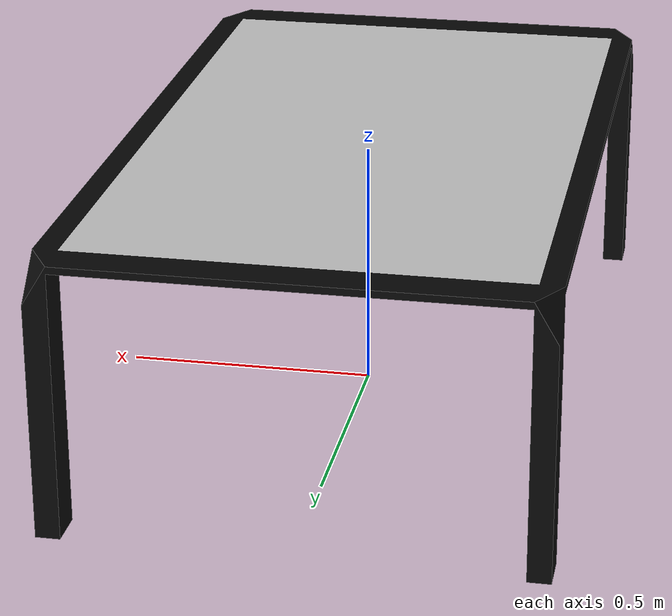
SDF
<?xml version='1.0' ?>
<sdf version='1.6'>
  <model name='coffee_table'>
    <static>false</static>
    <link name='link'>
      <collision name='collision'>
        <geometry>
          <mesh>
            <uri>model://volta_simulation/models/coffee_table/meshes/coffee_table.dae</uri>
          </mesh>
        </geometry>
        <surface>
          <friction>
            <ode>
              <mu>100</mu>
              <mu2>50</mu2>
            </ode>
          </friction>
        </surface>
      </collision>
      <visual name='visual'>
        <geometry>
          <mesh>
            <uri>model://volta_simulation/models/coffee_table/meshes/coffee_table.dae</uri>
          </mesh>
        </geometry>
</visual>
      <inertial>
        <pose>0 0 0.303495 0 0 0</pose>
        <mass>15</mass>
        <inertia>
          <ixx>3.241965 </ixx>
          <iyy>1.791462 </iyy>
          <izz>4.616436</izz>
          <ixy>0</ixy>
          <ixz>0 </ixz>
          <iyz>0</iyz>
        </inertia>
      </inertial>
    </link>
  </model>
</sdf>
